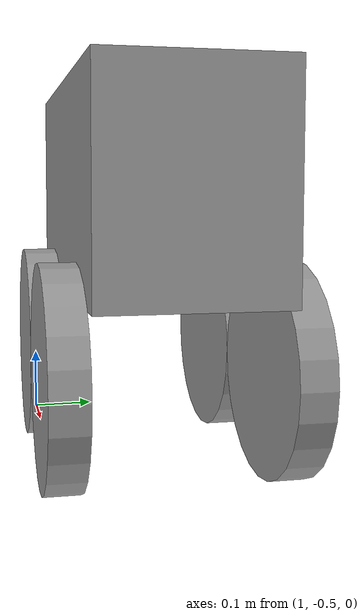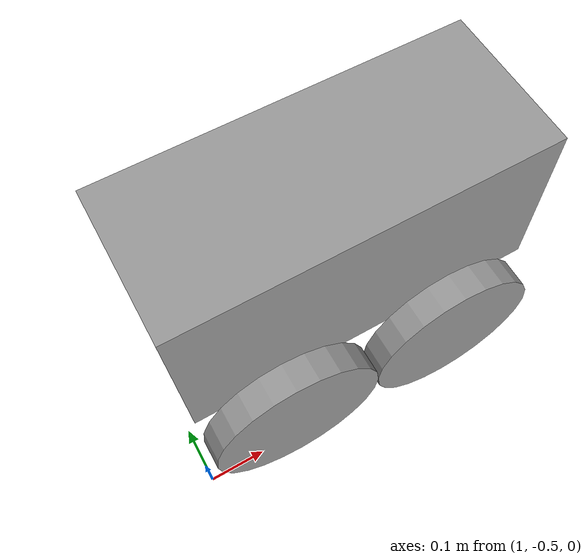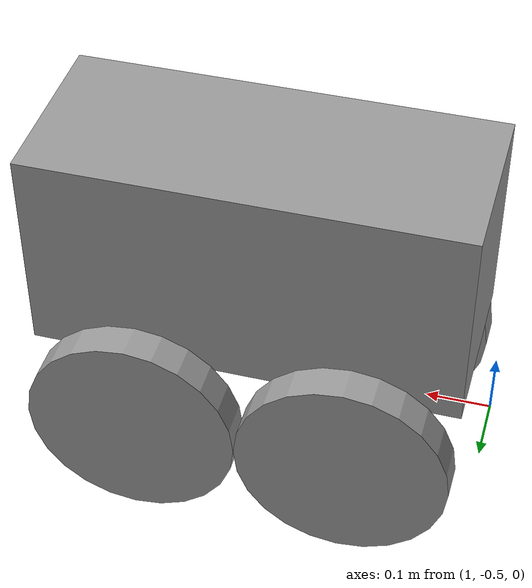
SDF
<?xml version='1.0'?>
<sdf version='1.6'>
  <model name='basic_car'>
    <link name='link_0'>
      <pose frame=''>1.3165 -0.353653 0.4 0 0 -1.5708</pose>
      <inertial>
        <mass>0.33308</mass>
        <inertia>
          <ixx>0.0193797</ixx>
          <ixy>0</ixy>
          <ixz>0</ixz>
          <iyy>0.0345449</iyy>
          <iyz>0</iyz>
          <izz>0.0403483</izz>
        </inertia>
        <pose frame=''>0 0 0 0 -0 0</pose>
      </inertial>
      <self_collide>0</self_collide>
      <kinematic>0</kinematic>
      <visual name='visual'>
        <pose frame=''>0 0 0 0 -0 0</pose>
        <geometry>
          <box>
            <size>0.25 0.6 0.3</size>
          </box>
        </geometry>
        <material>
          <lighting>1</lighting>
          <script>
            <uri>file://media/materials/scripts/gazebo.material</uri>
            <name>Gazebo/Grey</name>
          </script>
          <ambient>0.3 0.3 0.3 1</ambient>
          <diffuse>0.7 0.7 0.7 1</diffuse>
          <specular>0.01 0.01 0.01 1</specular>
          <emissive>0 0 0 1</emissive>
          <shader type='vertex'>
            <normal_map>__default__</normal_map>
          </shader>
        </material>
        <cast_shadows>1</cast_shadows>
        <transparency>0</transparency>
      </visual>
      <collision name='collision'>
        <laser_retro>0</laser_retro>
        <max_contacts>10</max_contacts>
        <pose frame=''>0 0 0 0 -0 0</pose>
        <geometry>
          <box>
            <size>0.25 0.6 0.3</size>
          </box>
        </geometry>
        <surface>
          <friction>
            <ode>
              <mu>1</mu>
              <mu2>1</mu2>
              <fdir1>0 0 0</fdir1>
              <slip1>0</slip1>
              <slip2>0</slip2>
            </ode>
            <torsional>
              <coefficient>1</coefficient>
              <patch_radius>0</patch_radius>
              <surface_radius>0</surface_radius>
              <use_patch_radius>1</use_patch_radius>
              <ode>
                <slip>0</slip>
              </ode>
            </torsional>
          </friction>
          <bounce>
            <restitution_coefficient>0</restitution_coefficient>
            <threshold>1e+06</threshold>
          </bounce>
          <contact>
            <collide_without_contact>0</collide_without_contact>
            <collide_without_contact_bitmask>1</collide_without_contact_bitmask>
            <collide_bitmask>1</collide_bitmask>
            <ode>
              <soft_cfm>0</soft_cfm>
              <soft_erp>0.2</soft_erp>
              <kp>1e+13</kp>
              <kd>1</kd>
              <max_vel>0.01</max_vel>
              <min_depth>0</min_depth>
            </ode>
            <bullet>
              <split_impulse>1</split_impulse>
              <split_impulse_penetration_threshold>-0.01</split_impulse_penetration_threshold>
              <soft_cfm>0</soft_cfm>
              <soft_erp>0.2</soft_erp>
              <kp>1e+13</kp>
              <kd>1</kd>
            </bullet>
          </contact>
        </surface>
      </collision>
    </link>
    <link name='link_1'>
      <pose frame=''>1.4665 -0.503654 0.15 -1.5708 0 0</pose>
      <inertial>
        <mass>1</mass>
        <inertia>
          <ixx>0.145833</ixx>
          <ixy>0</ixy>
          <ixz>0</ixz>
          <iyy>0.145833</iyy>
          <iyz>0</iyz>
          <izz>0.125</izz>
        </inertia>
        <pose frame=''>0 0 0 0 -0 0</pose>
      </inertial>
      <self_collide>0</self_collide>
      <kinematic>0</kinematic>
      <visual name='visual'>
        <pose frame=''>0 0 0 0 -0 0</pose>
        <geometry>
          <cylinder>
            <radius>0.15</radius>
            <length>0.05</length>
          </cylinder>
        </geometry>
        <material>
          <lighting>1</lighting>
          <script>
            <uri>file://media/materials/scripts/gazebo.material</uri>
            <name>Gazebo/Grey</name>
          </script>
          <ambient>0.3 0.3 0.3 1</ambient>
          <diffuse>0.7 0.7 0.7 1</diffuse>
          <specular>0.01 0.01 0.01 1</specular>
          <emissive>0 0 0 1</emissive>
          <shader type='vertex'>
            <normal_map>__default__</normal_map>
          </shader>
        </material>
        <cast_shadows>1</cast_shadows>
        <transparency>0</transparency>
      </visual>
      <collision name='collision'>
        <laser_retro>0</laser_retro>
        <max_contacts>10</max_contacts>
        <pose frame=''>0 0 0 0 -0 0</pose>
        <geometry>
          <cylinder>
            <radius>0.15</radius>
            <length>0.05</length>
          </cylinder>
        </geometry>
        <surface>
          <friction>
            <ode>
              <mu>1</mu>
              <mu2>1</mu2>
              <fdir1>0 0 0</fdir1>
              <slip1>0</slip1>
              <slip2>0</slip2>
            </ode>
            <torsional>
              <coefficient>1</coefficient>
              <patch_radius>0</patch_radius>
              <surface_radius>0</surface_radius>
              <use_patch_radius>1</use_patch_radius>
              <ode>
                <slip>0</slip>
              </ode>
            </torsional>
          </friction>
          <bounce>
            <restitution_coefficient>0</restitution_coefficient>
            <threshold>1e+06</threshold>
          </bounce>
          <contact>
            <collide_without_contact>0</collide_without_contact>
            <collide_without_contact_bitmask>1</collide_without_contact_bitmask>
            <collide_bitmask>1</collide_bitmask>
            <ode>
              <soft_cfm>0</soft_cfm>
              <soft_erp>0.2</soft_erp>
              <kp>1e+13</kp>
              <kd>1</kd>
              <max_vel>0.01</max_vel>
              <min_depth>0</min_depth>
            </ode>
            <bullet>
              <split_impulse>1</split_impulse>
              <split_impulse_penetration_threshold>-0.01</split_impulse_penetration_threshold>
              <soft_cfm>0</soft_cfm>
              <soft_erp>0.2</soft_erp>
              <kp>1e+13</kp>
              <kd>1</kd>
            </bullet>
          </contact>
        </surface>
      </collision>
    </link>
    <link name='link_1_clone'>
      <pose frame=''>1.1665 -0.203653 0.15 -1.5708 0 0</pose>
      <inertial>
        <mass>1</mass>
        <inertia>
          <ixx>0.145833</ixx>
          <ixy>0</ixy>
          <ixz>0</ixz>
          <iyy>0.145833</iyy>
          <iyz>0</iyz>
          <izz>0.125</izz>
        </inertia>
        <pose frame=''>0 0 0 0 -0 0</pose>
      </inertial>
      <self_collide>0</self_collide>
      <kinematic>0</kinematic>
      <visual name='visual'>
        <pose frame=''>0 0 0 0 -0 0</pose>
        <geometry>
          <cylinder>
            <radius>0.15</radius>
            <length>0.05</length>
          </cylinder>
        </geometry>
        <material>
          <lighting>1</lighting>
          <script>
            <uri>file://media/materials/scripts/gazebo.material</uri>
            <name>Gazebo/Grey</name>
          </script>
          <ambient>0.3 0.3 0.3 1</ambient>
          <diffuse>0.7 0.7 0.7 1</diffuse>
          <specular>0.01 0.01 0.01 1</specular>
          <emissive>0 0 0 1</emissive>
          <shader type='vertex'>
            <normal_map>__default__</normal_map>
          </shader>
        </material>
        <cast_shadows>1</cast_shadows>
        <transparency>0</transparency>
      </visual>
      <collision name='collision'>
        <laser_retro>0</laser_retro>
        <max_contacts>10</max_contacts>
        <pose frame=''>0 0 0 0 -0 0</pose>
        <geometry>
          <cylinder>
            <radius>0.15</radius>
            <length>0.05</length>
          </cylinder>
        </geometry>
        <surface>
          <friction>
            <ode>
              <mu>1</mu>
              <mu2>1</mu2>
              <fdir1>0 0 0</fdir1>
              <slip1>0</slip1>
              <slip2>0</slip2>
            </ode>
            <torsional>
              <coefficient>1</coefficient>
              <patch_radius>0</patch_radius>
              <surface_radius>0</surface_radius>
              <use_patch_radius>1</use_patch_radius>
              <ode>
                <slip>0</slip>
              </ode>
            </torsional>
          </friction>
          <bounce>
            <restitution_coefficient>0</restitution_coefficient>
            <threshold>1e+06</threshold>
          </bounce>
          <contact>
            <collide_without_contact>0</collide_without_contact>
            <collide_without_contact_bitmask>1</collide_without_contact_bitmask>
            <collide_bitmask>1</collide_bitmask>
            <ode>
              <soft_cfm>0</soft_cfm>
              <soft_erp>0.2</soft_erp>
              <kp>1e+13</kp>
              <kd>1</kd>
              <max_vel>0.01</max_vel>
              <min_depth>0</min_depth>
            </ode>
            <bullet>
              <split_impulse>1</split_impulse>
              <split_impulse_penetration_threshold>-0.01</split_impulse_penetration_threshold>
              <soft_cfm>0</soft_cfm>
              <soft_erp>0.2</soft_erp>
              <kp>1e+13</kp>
              <kd>1</kd>
            </bullet>
          </contact>
        </surface>
      </collision>
    </link>
    <link name='link_1_clone_0'>
      <pose frame=''>1.1665 -0.503655 0.15 -1.5708 0 0</pose>
      <inertial>
        <mass>1</mass>
        <inertia>
          <ixx>0.145833</ixx>
          <ixy>0</ixy>
          <ixz>0</ixz>
          <iyy>0.145833</iyy>
          <iyz>0</iyz>
          <izz>0.125</izz>
        </inertia>
        <pose frame=''>0 0 0 0 -0 0</pose>
      </inertial>
      <self_collide>0</self_collide>
      <kinematic>0</kinematic>
      <visual name='visual'>
        <pose frame=''>0 0 0 0 -0 0</pose>
        <geometry>
          <cylinder>
            <radius>0.15</radius>
            <length>0.05</length>
          </cylinder>
        </geometry>
        <material>
          <lighting>1</lighting>
          <script>
            <uri>file://media/materials/scripts/gazebo.material</uri>
            <name>Gazebo/Grey</name>
          </script>
          <ambient>0.3 0.3 0.3 1</ambient>
          <diffuse>0.7 0.7 0.7 1</diffuse>
          <specular>0.01 0.01 0.01 1</specular>
          <emissive>0 0 0 1</emissive>
          <shader type='vertex'>
            <normal_map>__default__</normal_map>
          </shader>
        </material>
        <cast_shadows>1</cast_shadows>
        <transparency>0</transparency>
      </visual>
      <collision name='collision'>
        <laser_retro>0</laser_retro>
        <max_contacts>10</max_contacts>
        <pose frame=''>0 0 0 0 -0 0</pose>
        <geometry>
          <cylinder>
            <radius>0.15</radius>
            <length>0.05</length>
          </cylinder>
        </geometry>
        <surface>
          <friction>
            <ode>
              <mu>1</mu>
              <mu2>1</mu2>
              <fdir1>0 0 0</fdir1>
              <slip1>0</slip1>
              <slip2>0</slip2>
            </ode>
            <torsional>
              <coefficient>1</coefficient>
              <patch_radius>0</patch_radius>
              <surface_radius>0</surface_radius>
              <use_patch_radius>1</use_patch_radius>
              <ode>
                <slip>0</slip>
              </ode>
            </torsional>
          </friction>
          <bounce>
            <restitution_coefficient>0</restitution_coefficient>
            <threshold>1e+06</threshold>
          </bounce>
          <contact>
            <collide_without_contact>0</collide_without_contact>
            <collide_without_contact_bitmask>1</collide_without_contact_bitmask>
            <collide_bitmask>1</collide_bitmask>
            <ode>
              <soft_cfm>0</soft_cfm>
              <soft_erp>0.2</soft_erp>
              <kp>1e+13</kp>
              <kd>1</kd>
              <max_vel>0.01</max_vel>
              <min_depth>0</min_depth>
            </ode>
            <bullet>
              <split_impulse>1</split_impulse>
              <split_impulse_penetration_threshold>-0.01</split_impulse_penetration_threshold>
              <soft_cfm>0</soft_cfm>
              <soft_erp>0.2</soft_erp>
              <kp>1e+13</kp>
              <kd>1</kd>
            </bullet>
          </contact>
        </surface>
      </collision>
    </link>
    <link name='link_1_clone_1'>
      <pose frame=''>1.4665 -0.203653 0.15 -1.5708 0 0</pose>
      <inertial>
        <mass>1</mass>
        <inertia>
          <ixx>0.145833</ixx>
          <ixy>0</ixy>
          <ixz>0</ixz>
          <iyy>0.145833</iyy>
          <iyz>0</iyz>
          <izz>0.125</izz>
        </inertia>
        <pose frame=''>0 0 0 0 -0 0</pose>
      </inertial>
      <self_collide>0</self_collide>
      <kinematic>0</kinematic>
      <visual name='visual'>
        <pose frame=''>0 0 0 0 -0 0</pose>
        <geometry>
          <cylinder>
            <radius>0.15</radius>
            <length>0.05</length>
          </cylinder>
        </geometry>
        <material>
          <lighting>1</lighting>
          <script>
            <uri>file://media/materials/scripts/gazebo.material</uri>
            <name>Gazebo/Grey</name>
          </script>
          <ambient>0.3 0.3 0.3 1</ambient>
          <diffuse>0.7 0.7 0.7 1</diffuse>
          <specular>0.01 0.01 0.01 1</specular>
          <emissive>0 0 0 1</emissive>
          <shader type='vertex'>
            <normal_map>__default__</normal_map>
          </shader>
        </material>
        <cast_shadows>1</cast_shadows>
        <transparency>0</transparency>
      </visual>
      <collision name='collision'>
        <laser_retro>0</laser_retro>
        <max_contacts>10</max_contacts>
        <pose frame=''>0 0 0 0 -0 0</pose>
        <geometry>
          <cylinder>
            <radius>0.15</radius>
            <length>0.05</length>
          </cylinder>
        </geometry>
        <surface>
          <friction>
            <ode>
              <mu>1</mu>
              <mu2>1</mu2>
              <fdir1>0 0 0</fdir1>
              <slip1>0</slip1>
              <slip2>0</slip2>
            </ode>
            <torsional>
              <coefficient>1</coefficient>
              <patch_radius>0</patch_radius>
              <surface_radius>0</surface_radius>
              <use_patch_radius>1</use_patch_radius>
              <ode>
                <slip>0</slip>
              </ode>
            </torsional>
          </friction>
          <bounce>
            <restitution_coefficient>0</restitution_coefficient>
            <threshold>1e+06</threshold>
          </bounce>
          <contact>
            <collide_without_contact>0</collide_without_contact>
            <collide_without_contact_bitmask>1</collide_without_contact_bitmask>
            <collide_bitmask>1</collide_bitmask>
            <ode>
              <soft_cfm>0</soft_cfm>
              <soft_erp>0.2</soft_erp>
              <kp>1e+13</kp>
              <kd>1</kd>
              <max_vel>0.01</max_vel>
              <min_depth>0</min_depth>
            </ode>
            <bullet>
              <split_impulse>1</split_impulse>
              <split_impulse_penetration_threshold>-0.01</split_impulse_penetration_threshold>
              <soft_cfm>0</soft_cfm>
              <soft_erp>0.2</soft_erp>
              <kp>1e+13</kp>
              <kd>1</kd>
            </bullet>
          </contact>
        </surface>
      </collision>
    </link>
    <joint name='link_0_JOINT_0' type='revolute'>
      <parent>link_0</parent>
      <child>link_1_clone_1</child>
      <pose frame=''>0 0 0 0 -0 0</pose>
      <axis>
        <xyz>0 0 1</xyz>
        <use_parent_model_frame>0</use_parent_model_frame>
        <limit>
          <lower>-1.79769e+308</lower>
          <upper>1.79769e+308</upper>
          <effort>-1</effort>
          <velocity>-1</velocity>
        </limit>
        <dynamics>
          <spring_reference>0</spring_reference>
          <spring_stiffness>0</spring_stiffness>
          <damping>0</damping>
          <friction>0</friction>
        </dynamics>
      </axis>
      <physics>
        <ode>
          <limit>
            <cfm>0</cfm>
            <erp>0.2</erp>
          </limit>
          <suspension>
            <cfm>0</cfm>
            <erp>0.2</erp>
          </suspension>
        </ode>
      </physics>
    </joint>
    <joint name='link_0_JOINT_2' type='revolute'>
      <parent>link_0</parent>
      <child>link_1_clone</child>
      <pose frame=''>0 0 0 0 -0 0</pose>
      <axis>
        <xyz>0 0 1</xyz>
        <use_parent_model_frame>0</use_parent_model_frame>
        <limit>
          <lower>-1.79769e+308</lower>
          <upper>1.79769e+308</upper>
          <effort>-1</effort>
          <velocity>-1</velocity>
        </limit>
        <dynamics>
          <spring_reference>0</spring_reference>
          <spring_stiffness>0</spring_stiffness>
          <damping>0</damping>
          <friction>0</friction>
        </dynamics>
      </axis>
      <physics>
        <ode>
          <limit>
            <cfm>0</cfm>
            <erp>0.2</erp>
          </limit>
          <suspension>
            <cfm>0</cfm>
            <erp>0.2</erp>
          </suspension>
        </ode>
      </physics>
    </joint>
    <joint name='link_0_JOINT_3' type='revolute'>
      <parent>link_0</parent>
      <child>link_1</child>
      <pose frame=''>0 0 0 0 -0 0</pose>
      <axis>
        <xyz>0 0 1</xyz>
        <use_parent_model_frame>0</use_parent_model_frame>
        <limit>
          <lower>-1.79769e+308</lower>
          <upper>1.79769e+308</upper>
          <effort>-1</effort>
          <velocity>-1</velocity>
        </limit>
        <dynamics>
          <spring_reference>0</spring_reference>
          <spring_stiffness>0</spring_stiffness>
          <damping>0</damping>
          <friction>0</friction>
        </dynamics>
      </axis>
      <physics>
        <ode>
          <limit>
            <cfm>0</cfm>
            <erp>0.2</erp>
          </limit>
          <suspension>
            <cfm>0</cfm>
            <erp>0.2</erp>
          </suspension>
        </ode>
      </physics>
    </joint>
    <joint name='link_0_JOINT_4' type='revolute'>
      <parent>link_0</parent>
      <child>link_1_clone_0</child>
      <pose frame=''>0 0 0 0 -0 0</pose>
      <axis>
        <xyz>0 0 1</xyz>
        <use_parent_model_frame>0</use_parent_model_frame>
        <limit>
          <lower>-1.79769e+308</lower>
          <upper>1.79769e+308</upper>
          <effort>-1</effort>
          <velocity>-1</velocity>
        </limit>
        <dynamics>
          <spring_reference>0</spring_reference>
          <spring_stiffness>0</spring_stiffness>
          <damping>0</damping>
          <friction>0</friction>
        </dynamics>
      </axis>
      <physics>
        <ode>
          <limit>
            <cfm>0</cfm>
            <erp>0.2</erp>
          </limit>
          <suspension>
            <cfm>0</cfm>
            <erp>0.2</erp>
          </suspension>
        </ode>
      </physics>
    </joint>
    <static>0</static>
    <allow_auto_disable>1</allow_auto_disable>
    <plugin name='FRCBlueRobotPlugin' filename='libFRCBlueRobotPlugin.so'/>
  </model>
</sdf>
